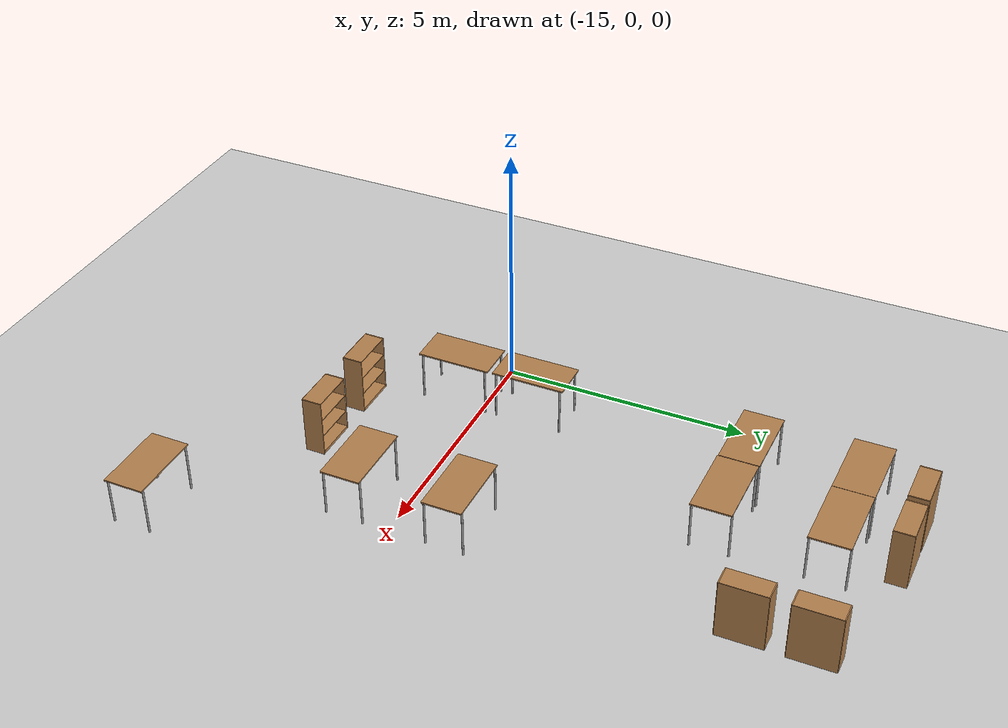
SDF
<sdf version="1.5">
 <world name="default">
  <model name="ground_plane">
   <static>1</static>
   <link name="link">
    <collision name="collision">
     <geometry><plane><normal>0 0 1</normal><size>100 100</size></plane></geometry>
     <surface><friction><ode><mu>100</mu><mu2>50</mu2></ode></friction></surface>
    </collision>
    <visual name="visual">
     <cast_shadows>0</cast_shadows>
     <geometry><plane><normal>0 0 1</normal><size>100 100</size></plane></geometry>
     <material>
      <script><uri>file://media/materials/scripts/gazebo.material</uri><name>Gazebo/Grey</name></script>
     </material>
    </visual>
   </link>
  </model>
  <model name="table_3">
   <static>1</static>
   <link name="link">
    <collision name="surface">
     <pose>0 0 1 0 -0 0</pose>
     <geometry><box><size>1.5 0.8 0.03</size></box></geometry>
     <surface><friction><ode><mu>0.6</mu><mu2>0.6</mu2></ode></friction></surface>
    </collision>
    <visual name="visual1">
     <pose>0 0 1 0 -0 0</pose>
     <geometry><box><size>1.5 0.8 0.03</size></box></geometry>
     <material>
      <script><uri>file://media/materials/scripts/gazebo.material</uri><name>Gazebo/Wood</name></script>
     </material>
    </visual>
    <collision name="front_left_leg">
     <pose>0.68 0.38 0.5 0 -0 0</pose>
     <geometry><cylinder><radius>0.02</radius><length>1</length></cylinder></geometry>
    </collision>
    <visual name="front_left_leg">
     <pose>0.68 0.38 0.5 0 -0 0</pose>
     <geometry><cylinder><radius>0.02</radius><length>1</length></cylinder></geometry>
     <material>
      <script><uri>file://media/materials/scripts/gazebo.material</uri><name>Gazebo/Grey</name></script>
     </material>
    </visual>
    <collision name="front_right_leg">
     <pose>0.68 -0.38 0.5 0 -0 0</pose>
     <geometry><cylinder><radius>0.02</radius><length>1</length></cylinder></geometry>
    </collision>
    <visual name="front_right_leg">
     <pose>0.68 -0.38 0.5 0 -0 0</pose>
     <geometry><cylinder><radius>0.02</radius><length>1</length></cylinder></geometry>
     <material>
      <script><uri>file://media/materials/scripts/gazebo.material</uri><name>Gazebo/Grey</name></script>
     </material>
    </visual>
    <collision name="back_right_leg">
     <pose>-0.68 -0.38 0.5 0 -0 0</pose>
     <geometry><cylinder><radius>0.02</radius><length>1</length></cylinder></geometry>
    </collision>
    <visual name="back_right_leg">
     <pose>-0.68 -0.38 0.5 0 -0 0</pose>
     <geometry><cylinder><radius>0.02</radius><length>1</length></cylinder></geometry>
     <material>
      <script><uri>file://media/materials/scripts/gazebo.material</uri><name>Gazebo/Grey</name></script>
     </material>
    </visual>
    <collision name="back_left_leg">
     <pose>-0.68 0.38 0.5 0 -0 0</pose>
     <geometry><cylinder><radius>0.02</radius><length>1</length></cylinder></geometry>
    </collision>
    <visual name="back_left_leg">
     <pose>-0.68 0.38 0.5 0 -0 0</pose>
     <geometry><cylinder><radius>0.02</radius><length>1</length></cylinder></geometry>
     <material>
      <script><uri>file://media/materials/scripts/gazebo.material</uri><name>Gazebo/Grey</name></script>
     </material>
    </visual>
   </link>
   <pose>-13.7373 7.65628 0 0 -0 0</pose>
  </model>
  <model name="table_4">
   <static>1</static>
   <link name="link">
    <collision name="surface">
     <pose>0 0 1 0 -0 0</pose>
     <geometry><box><size>1.5 0.8 0.03</size></box></geometry>
     <surface><friction><ode><mu>0.6</mu><mu2>0.6</mu2></ode></friction></surface>
    </collision>
    <visual name="visual1">
     <pose>0 0 1 0 -0 0</pose>
     <geometry><box><size>1.5 0.8 0.03</size></box></geometry>
     <material>
      <script><uri>file://media/materials/scripts/gazebo.material</uri><name>Gazebo/Wood</name></script>
     </material>
    </visual>
    <collision name="front_left_leg">
     <pose>0.68 0.38 0.5 0 -0 0</pose>
     <geometry><cylinder><radius>0.02</radius><length>1</length></cylinder></geometry>
    </collision>
    <visual name="front_left_leg">
     <pose>0.68 0.38 0.5 0 -0 0</pose>
     <geometry><cylinder><radius>0.02</radius><length>1</length></cylinder></geometry>
     <material>
      <script><uri>file://media/materials/scripts/gazebo.material</uri><name>Gazebo/Grey</name></script>
     </material>
    </visual>
    <collision name="front_right_leg">
     <pose>0.68 -0.38 0.5 0 -0 0</pose>
     <geometry><cylinder><radius>0.02</radius><length>1</length></cylinder></geometry>
    </collision>
    <visual name="front_right_leg">
     <pose>0.68 -0.38 0.5 0 -0 0</pose>
     <geometry><cylinder><radius>0.02</radius><length>1</length></cylinder></geometry>
     <material>
      <script><uri>file://media/materials/scripts/gazebo.material</uri><name>Gazebo/Grey</name></script>
     </material>
    </visual>
    <collision name="back_right_leg">
     <pose>-0.68 -0.38 0.5 0 -0 0</pose>
     <geometry><cylinder><radius>0.02</radius><length>1</length></cylinder></geometry>
    </collision>
    <visual name="back_right_leg">
     <pose>-0.68 -0.38 0.5 0 -0 0</pose>
     <geometry><cylinder><radius>0.02</radius><length>1</length></cylinder></geometry>
     <material>
      <script><uri>file://media/materials/scripts/gazebo.material</uri><name>Gazebo/Grey</name></script>
     </material>
    </visual>
    <collision name="back_left_leg">
     <pose>-0.68 0.38 0.5 0 -0 0</pose>
     <geometry><cylinder><radius>0.02</radius><length>1</length></cylinder></geometry>
    </collision>
    <visual name="back_left_leg">
     <pose>-0.68 0.38 0.5 0 -0 0</pose>
     <geometry><cylinder><radius>0.02</radius><length>1</length></cylinder></geometry>
     <material>
      <script><uri>file://media/materials/scripts/gazebo.material</uri><name>Gazebo/Grey</name></script>
     </material>
    </visual>
   </link>
   <pose>-12.2332 7.652 0 0 -0 0</pose>
  </model>
  <model name="table_5">
   <static>1</static>
   <link name="link">
    <collision name="surface">
     <pose>0 0 1 0 -0 0</pose>
     <geometry><box><size>1.5 0.8 0.03</size></box></geometry>
     <surface><friction><ode><mu>0.6</mu><mu2>0.6</mu2></ode></friction></surface>
    </collision>
    <visual name="visual1">
     <pose>0 0 1 0 -0 0</pose>
     <geometry><box><size>1.5 0.8 0.03</size></box></geometry>
     <material>
      <script><uri>file://media/materials/scripts/gazebo.material</uri><name>Gazebo/Wood</name></script>
     </material>
    </visual>
    <collision name="front_left_leg">
     <pose>0.68 0.38 0.5 0 -0 0</pose>
     <geometry><cylinder><radius>0.02</radius><length>1</length></cylinder></geometry>
    </collision>
    <visual name="front_left_leg">
     <pose>0.68 0.38 0.5 0 -0 0</pose>
     <geometry><cylinder><radius>0.02</radius><length>1</length></cylinder></geometry>
     <material>
      <script><uri>file://media/materials/scripts/gazebo.material</uri><name>Gazebo/Grey</name></script>
     </material>
    </visual>
    <collision name="front_right_leg">
     <pose>0.68 -0.38 0.5 0 -0 0</pose>
     <geometry><cylinder><radius>0.02</radius><length>1</length></cylinder></geometry>
    </collision>
    <visual name="front_right_leg">
     <pose>0.68 -0.38 0.5 0 -0 0</pose>
     <geometry><cylinder><radius>0.02</radius><length>1</length></cylinder></geometry>
     <material>
      <script><uri>file://media/materials/scripts/gazebo.material</uri><name>Gazebo/Grey</name></script>
     </material>
    </visual>
    <collision name="back_right_leg">
     <pose>-0.68 -0.38 0.5 0 -0 0</pose>
     <geometry><cylinder><radius>0.02</radius><length>1</length></cylinder></geometry>
    </collision>
    <visual name="back_right_leg">
     <pose>-0.68 -0.38 0.5 0 -0 0</pose>
     <geometry><cylinder><radius>0.02</radius><length>1</length></cylinder></geometry>
     <material>
      <script><uri>file://media/materials/scripts/gazebo.material</uri><name>Gazebo/Grey</name></script>
     </material>
    </visual>
    <collision name="back_left_leg">
     <pose>-0.68 0.38 0.5 0 -0 0</pose>
     <geometry><cylinder><radius>0.02</radius><length>1</length></cylinder></geometry>
    </collision>
    <visual name="back_left_leg">
     <pose>-0.68 0.38 0.5 0 -0 0</pose>
     <geometry><cylinder><radius>0.02</radius><length>1</length></cylinder></geometry>
     <material>
      <script><uri>file://media/materials/scripts/gazebo.material</uri><name>Gazebo/Grey</name></script>
     </material>
    </visual>
   </link>
   <pose>-13.7221 5.51232 0 0 -0 0</pose>
  </model>
  <model name="table_4_clone">
   <static>1</static>
   <link name="link">
    <collision name="surface">
     <pose>0 0 1 0 -0 0</pose>
     <geometry><box><size>1.5 0.8 0.03</size></box></geometry>
     <surface><friction><ode><mu>0.6</mu><mu2>0.6</mu2></ode></friction></surface>
    </collision>
    <visual name="visual1">
     <pose>0 0 1 0 -0 0</pose>
     <geometry><box><size>1.5 0.8 0.03</size></box></geometry>
     <material>
      <script><uri>file://media/materials/scripts/gazebo.material</uri><name>Gazebo/Wood</name></script>
     </material>
    </visual>
    <collision name="front_left_leg">
     <pose>0.68 0.38 0.5 0 -0 0</pose>
     <geometry><cylinder><radius>0.02</radius><length>1</length></cylinder></geometry>
    </collision>
    <visual name="front_left_leg">
     <pose>0.68 0.38 0.5 0 -0 0</pose>
     <geometry><cylinder><radius>0.02</radius><length>1</length></cylinder></geometry>
     <material>
      <script><uri>file://media/materials/scripts/gazebo.material</uri><name>Gazebo/Grey</name></script>
     </material>
    </visual>
    <collision name="front_right_leg">
     <pose>0.68 -0.38 0.5 0 -0 0</pose>
     <geometry><cylinder><radius>0.02</radius><length>1</length></cylinder></geometry>
    </collision>
    <visual name="front_right_leg">
     <pose>0.68 -0.38 0.5 0 -0 0</pose>
     <geometry><cylinder><radius>0.02</radius><length>1</length></cylinder></geometry>
     <material>
      <script><uri>file://media/materials/scripts/gazebo.material</uri><name>Gazebo/Grey</name></script>
     </material>
    </visual>
    <collision name="back_right_leg">
     <pose>-0.68 -0.38 0.5 0 -0 0</pose>
     <geometry><cylinder><radius>0.02</radius><length>1</length></cylinder></geometry>
    </collision>
    <visual name="back_right_leg">
     <pose>-0.68 -0.38 0.5 0 -0 0</pose>
     <geometry><cylinder><radius>0.02</radius><length>1</length></cylinder></geometry>
     <material>
      <script><uri>file://media/materials/scripts/gazebo.material</uri><name>Gazebo/Grey</name></script>
     </material>
    </visual>
    <collision name="back_left_leg">
     <pose>-0.68 0.38 0.5 0 -0 0</pose>
     <geometry><cylinder><radius>0.02</radius><length>1</length></cylinder></geometry>
    </collision>
    <visual name="back_left_leg">
     <pose>-0.68 0.38 0.5 0 -0 0</pose>
     <geometry><cylinder><radius>0.02</radius><length>1</length></cylinder></geometry>
     <material>
      <script><uri>file://media/materials/scripts/gazebo.material</uri><name>Gazebo/Grey</name></script>
     </material>
    </visual>
   </link>
   <pose>-12.2087 5.50056 0 0 -0 0</pose>
  </model>
  <model name="bookshelf_3">
   <static>1</static>
   <link name="link">
    <inertial><mass>1</mass></inertial>
    <collision name="back">
     <pose>0 0.005 0.6 0 -0 0</pose>
     <geometry><box><size>0.9 0.01 1.2</size></box></geometry>
    </collision>
    <visual name="visual1">
     <pose>0 0.005 0.6 0 -0 0</pose>
     <geometry><box><size>0.9 0.01 1.2</size></box></geometry>
     <material>
      <script><uri>file://media/materials/scripts/gazebo.material</uri><name>Gazebo/Wood</name></script>
     </material>
    </visual>
    <collision name="left_side">
     <pose>0.45 -0.195 0.6 0 -0 0</pose>
     <geometry><box><size>0.02 0.4 1.2</size></box></geometry>
    </collision>
    <visual name="visual2">
     <pose>0.45 -0.195 0.6 0 -0 0</pose>
     <geometry><box><size>0.02 0.4 1.2</size></box></geometry>
     <material>
      <script><uri>file://media/materials/scripts/gazebo.material</uri><name>Gazebo/Wood</name></script>
     </material>
    </visual>
    <collision name="right_side">
     <pose>-0.45 -0.195 0.6 0 -0 0</pose>
     <geometry><box><size>0.02 0.4 1.2</size></box></geometry>
    </collision>
    <visual name="visual3">
     <pose>-0.45 -0.195 0.6 0 -0 0</pose>
     <geometry><box><size>0.02 0.4 1.2</size></box></geometry>
     <material>
      <script><uri>file://media/materials/scripts/gazebo.material</uri><name>Gazebo/Wood</name></script>
     </material>
    </visual>
    <collision name="bottom">
     <pose>0 -0.195 0.03 0 -0 0</pose>
     <geometry><box><size>0.88 0.4 0.06</size></box></geometry>
    </collision>
    <visual name="visual4">
     <pose>0 -0.195 0.03 0 -0 0</pose>
     <geometry><box><size>0.88 0.4 0.06</size></box></geometry>
     <material>
      <script><uri>file://media/materials/scripts/gazebo.material</uri><name>Gazebo/Wood</name></script>
     </material>
    </visual>
    <collision name="top">
     <pose>0 -0.195 1.19 0 -0 0</pose>
     <geometry><box><size>0.88 0.4 0.02</size></box></geometry>
    </collision>
    <visual name="visual5">
     <pose>0 -0.195 1.19 0 -0 0</pose>
     <geometry><box><size>0.88 0.4 0.02</size></box></geometry>
     <material>
      <script><uri>file://media/materials/scripts/gazebo.material</uri><name>Gazebo/Wood</name></script>
     </material>
    </visual>
    <collision name="low_shelf">
     <pose>0 -0.195 0.43 0 -0 0</pose>
     <geometry><box><size>0.88 0.4 0.02</size></box></geometry>
    </collision>
    <visual name="visual6">
     <pose>0 -0.195 0.43 0 -0 0</pose>
     <geometry><box><size>0.88 0.4 0.02</size></box></geometry>
     <material>
      <script><uri>file://media/materials/scripts/gazebo.material</uri><name>Gazebo/Wood</name></script>
     </material>
    </visual>
    <collision name="high_shelf">
     <pose>0 -0.195 0.8 0 -0 0</pose>
     <geometry><box><size>0.88 0.4 0.02</size></box></geometry>
    </collision>
    <visual name="visual7">
     <pose>0 -0.195 0.8 0 -0 0</pose>
     <geometry><box><size>0.88 0.4 0.02</size></box></geometry>
     <material>
      <script><uri>file://media/materials/scripts/gazebo.material</uri><name>Gazebo/Wood</name></script>
     </material>
    </visual>
   </link>
   <pose>-13.5188 8.98844 0 0 -0 0</pose>
  </model>
  <model name="bookshelf_3_clone">
   <static>1</static>
   <link name="link">
    <inertial><mass>1</mass></inertial>
    <collision name="back">
     <pose>0 0.005 0.6 0 -0 0</pose>
     <geometry><box><size>0.9 0.01 1.2</size></box></geometry>
    </collision>
    <visual name="visual1">
     <pose>0 0.005 0.6 0 -0 0</pose>
     <geometry><box><size>0.9 0.01 1.2</size></box></geometry>
     <material>
      <script><uri>file://media/materials/scripts/gazebo.material</uri><name>Gazebo/Wood</name></script>
     </material>
    </visual>
    <collision name="left_side">
     <pose>0.45 -0.195 0.6 0 -0 0</pose>
     <geometry><box><size>0.02 0.4 1.2</size></box></geometry>
    </collision>
    <visual name="visual2">
     <pose>0.45 -0.195 0.6 0 -0 0</pose>
     <geometry><box><size>0.02 0.4 1.2</size></box></geometry>
     <material>
      <script><uri>file://media/materials/scripts/gazebo.material</uri><name>Gazebo/Wood</name></script>
     </material>
    </visual>
    <collision name="right_side">
     <pose>-0.45 -0.195 0.6 0 -0 0</pose>
     <geometry><box><size>0.02 0.4 1.2</size></box></geometry>
    </collision>
    <visual name="visual3">
     <pose>-0.45 -0.195 0.6 0 -0 0</pose>
     <geometry><box><size>0.02 0.4 1.2</size></box></geometry>
     <material>
      <script><uri>file://media/materials/scripts/gazebo.material</uri><name>Gazebo/Wood</name></script>
     </material>
    </visual>
    <collision name="bottom">
     <pose>0 -0.195 0.03 0 -0 0</pose>
     <geometry><box><size>0.88 0.4 0.06</size></box></geometry>
    </collision>
    <visual name="visual4">
     <pose>0 -0.195 0.03 0 -0 0</pose>
     <geometry><box><size>0.88 0.4 0.06</size></box></geometry>
     <material>
      <script><uri>file://media/materials/scripts/gazebo.material</uri><name>Gazebo/Wood</name></script>
     </material>
    </visual>
    <collision name="top">
     <pose>0 -0.195 1.19 0 -0 0</pose>
     <geometry><box><size>0.88 0.4 0.02</size></box></geometry>
    </collision>
    <visual name="visual5">
     <pose>0 -0.195 1.19 0 -0 0</pose>
     <geometry><box><size>0.88 0.4 0.02</size></box></geometry>
     <material>
      <script><uri>file://media/materials/scripts/gazebo.material</uri><name>Gazebo/Wood</name></script>
     </material>
    </visual>
    <collision name="low_shelf">
     <pose>0 -0.195 0.43 0 -0 0</pose>
     <geometry><box><size>0.88 0.4 0.02</size></box></geometry>
    </collision>
    <visual name="visual6">
     <pose>0 -0.195 0.43 0 -0 0</pose>
     <geometry><box><size>0.88 0.4 0.02</size></box></geometry>
     <material>
      <script><uri>file://media/materials/scripts/gazebo.material</uri><name>Gazebo/Wood</name></script>
     </material>
    </visual>
    <collision name="high_shelf">
     <pose>0 -0.195 0.8 0 -0 0</pose>
     <geometry><box><size>0.88 0.4 0.02</size></box></geometry>
    </collision>
    <visual name="visual7">
     <pose>0 -0.195 0.8 0 -0 0</pose>
     <geometry><box><size>0.88 0.4 0.02</size></box></geometry>
     <material>
      <script><uri>file://media/materials/scripts/gazebo.material</uri><name>Gazebo/Wood</name></script>
     </material>
    </visual>
   </link>
   <pose>-12.4901 8.9872 0 0 -0 0</pose>
  </model>
  <model name="bookshelf_4">
   <static>1</static>
   <link name="link">
    <inertial><mass>1</mass></inertial>
    <collision name="back">
     <pose>0 0.005 0.6 0 -0 0</pose>
     <geometry><box><size>0.9 0.01 1.2</size></box></geometry>
    </collision>
    <visual name="visual1">
     <pose>0 0.005 0.6 0 -0 0</pose>
     <geometry><box><size>0.9 0.01 1.2</size></box></geometry>
     <material>
      <script><uri>file://media/materials/scripts/gazebo.material</uri><name>Gazebo/Wood</name></script>
     </material>
    </visual>
    <collision name="left_side">
     <pose>0.45 -0.195 0.6 0 -0 0</pose>
     <geometry><box><size>0.02 0.4 1.2</size></box></geometry>
    </collision>
    <visual name="visual2">
     <pose>0.45 -0.195 0.6 0 -0 0</pose>
     <geometry><box><size>0.02 0.4 1.2</size></box></geometry>
     <material>
      <script><uri>file://media/materials/scripts/gazebo.material</uri><name>Gazebo/Wood</name></script>
     </material>
    </visual>
    <collision name="right_side">
     <pose>-0.45 -0.195 0.6 0 -0 0</pose>
     <geometry><box><size>0.02 0.4 1.2</size></box></geometry>
    </collision>
    <visual name="visual3">
     <pose>-0.45 -0.195 0.6 0 -0 0</pose>
     <geometry><box><size>0.02 0.4 1.2</size></box></geometry>
     <material>
      <script><uri>file://media/materials/scripts/gazebo.material</uri><name>Gazebo/Wood</name></script>
     </material>
    </visual>
    <collision name="bottom">
     <pose>0 -0.195 0.03 0 -0 0</pose>
     <geometry><box><size>0.88 0.4 0.06</size></box></geometry>
    </collision>
    <visual name="visual4">
     <pose>0 -0.195 0.03 0 -0 0</pose>
     <geometry><box><size>0.88 0.4 0.06</size></box></geometry>
     <material>
      <script><uri>file://media/materials/scripts/gazebo.material</uri><name>Gazebo/Wood</name></script>
     </material>
    </visual>
    <collision name="top">
     <pose>0 -0.195 1.19 0 -0 0</pose>
     <geometry><box><size>0.88 0.4 0.02</size></box></geometry>
    </collision>
    <visual name="visual5">
     <pose>0 -0.195 1.19 0 -0 0</pose>
     <geometry><box><size>0.88 0.4 0.02</size></box></geometry>
     <material>
      <script><uri>file://media/materials/scripts/gazebo.material</uri><name>Gazebo/Wood</name></script>
     </material>
    </visual>
    <collision name="low_shelf">
     <pose>0 -0.195 0.43 0 -0 0</pose>
     <geometry><box><size>0.88 0.4 0.02</size></box></geometry>
    </collision>
    <visual name="visual6">
     <pose>0 -0.195 0.43 0 -0 0</pose>
     <geometry><box><size>0.88 0.4 0.02</size></box></geometry>
     <material>
      <script><uri>file://media/materials/scripts/gazebo.material</uri><name>Gazebo/Wood</name></script>
     </material>
    </visual>
    <collision name="high_shelf">
     <pose>0 -0.195 0.8 0 -0 0</pose>
     <geometry><box><size>0.88 0.4 0.02</size></box></geometry>
    </collision>
    <visual name="visual7">
     <pose>0 -0.195 0.8 0 -0 0</pose>
     <geometry><box><size>0.88 0.4 0.02</size></box></geometry>
     <material>
      <script><uri>file://media/materials/scripts/gazebo.material</uri><name>Gazebo/Wood</name></script>
     </material>
    </visual>
   </link>
   <pose>-9.57059 6.7294 0 0 0 -1.56676</pose>
  </model>
  <model name="bookshelf_4_clone">
   <static>1</static>
   <link name="link">
    <inertial><mass>1</mass></inertial>
    <collision name="back">
     <pose>0 0.005 0.6 0 -0 0</pose>
     <geometry><box><size>0.9 0.01 1.2</size></box></geometry>
    </collision>
    <visual name="visual1">
     <pose>0 0.005 0.6 0 -0 0</pose>
     <geometry><box><size>0.9 0.01 1.2</size></box></geometry>
     <material>
      <script><uri>file://media/materials/scripts/gazebo.material</uri><name>Gazebo/Wood</name></script>
     </material>
    </visual>
    <collision name="left_side">
     <pose>0.45 -0.195 0.6 0 -0 0</pose>
     <geometry><box><size>0.02 0.4 1.2</size></box></geometry>
    </collision>
    <visual name="visual2">
     <pose>0.45 -0.195 0.6 0 -0 0</pose>
     <geometry><box><size>0.02 0.4 1.2</size></box></geometry>
     <material>
      <script><uri>file://media/materials/scripts/gazebo.material</uri><name>Gazebo/Wood</name></script>
     </material>
    </visual>
    <collision name="right_side">
     <pose>-0.45 -0.195 0.6 0 -0 0</pose>
     <geometry><box><size>0.02 0.4 1.2</size></box></geometry>
    </collision>
    <visual name="visual3">
     <pose>-0.45 -0.195 0.6 0 -0 0</pose>
     <geometry><box><size>0.02 0.4 1.2</size></box></geometry>
     <material>
      <script><uri>file://media/materials/scripts/gazebo.material</uri><name>Gazebo/Wood</name></script>
     </material>
    </visual>
    <collision name="bottom">
     <pose>0 -0.195 0.03 0 -0 0</pose>
     <geometry><box><size>0.88 0.4 0.06</size></box></geometry>
    </collision>
    <visual name="visual4">
     <pose>0 -0.195 0.03 0 -0 0</pose>
     <geometry><box><size>0.88 0.4 0.06</size></box></geometry>
     <material>
      <script><uri>file://media/materials/scripts/gazebo.material</uri><name>Gazebo/Wood</name></script>
     </material>
    </visual>
    <collision name="top">
     <pose>0 -0.195 1.19 0 -0 0</pose>
     <geometry><box><size>0.88 0.4 0.02</size></box></geometry>
    </collision>
    <visual name="visual5">
     <pose>0 -0.195 1.19 0 -0 0</pose>
     <geometry><box><size>0.88 0.4 0.02</size></box></geometry>
     <material>
      <script><uri>file://media/materials/scripts/gazebo.material</uri><name>Gazebo/Wood</name></script>
     </material>
    </visual>
    <collision name="low_shelf">
     <pose>0 -0.195 0.43 0 -0 0</pose>
     <geometry><box><size>0.88 0.4 0.02</size></box></geometry>
    </collision>
    <visual name="visual6">
     <pose>0 -0.195 0.43 0 -0 0</pose>
     <geometry><box><size>0.88 0.4 0.02</size></box></geometry>
     <material>
      <script><uri>file://media/materials/scripts/gazebo.material</uri><name>Gazebo/Wood</name></script>
     </material>
    </visual>
    <collision name="high_shelf">
     <pose>0 -0.195 0.8 0 -0 0</pose>
     <geometry><box><size>0.88 0.4 0.02</size></box></geometry>
    </collision>
    <visual name="visual7">
     <pose>0 -0.195 0.8 0 -0 0</pose>
     <geometry><box><size>0.88 0.4 0.02</size></box></geometry>
     <material>
      <script><uri>file://media/materials/scripts/gazebo.material</uri><name>Gazebo/Wood</name></script>
     </material>
    </visual>
   </link>
   <pose>-9.56947 8.00174 0 0 0 -1.56676</pose>
  </model>
  <model name="table_4_clone_clone">
   <static>1</static>
   <link name="link">
    <collision name="surface">
     <pose>0 0 1 0 -0 0</pose>
     <geometry><box><size>1.5 0.8 0.03</size></box></geometry>
     <surface><friction><ode><mu>0.6</mu><mu2>0.6</mu2></ode></friction></surface>
    </collision>
    <visual name="visual1">
     <pose>0 0 1 0 -0 0</pose>
     <geometry><box><size>1.5 0.8 0.03</size></box></geometry>
     <material>
      <script><uri>file://media/materials/scripts/gazebo.material</uri><name>Gazebo/Wood</name></script>
     </material>
    </visual>
    <collision name="front_left_leg">
     <pose>0.68 0.38 0.5 0 -0 0</pose>
     <geometry><cylinder><radius>0.02</radius><length>1</length></cylinder></geometry>
    </collision>
    <visual name="front_left_leg">
     <pose>0.68 0.38 0.5 0 -0 0</pose>
     <geometry><cylinder><radius>0.02</radius><length>1</length></cylinder></geometry>
     <material>
      <script><uri>file://media/materials/scripts/gazebo.material</uri><name>Gazebo/Grey</name></script>
     </material>
    </visual>
    <collision name="front_right_leg">
     <pose>0.68 -0.38 0.5 0 -0 0</pose>
     <geometry><cylinder><radius>0.02</radius><length>1</length></cylinder></geometry>
    </collision>
    <visual name="front_right_leg">
     <pose>0.68 -0.38 0.5 0 -0 0</pose>
     <geometry><cylinder><radius>0.02</radius><length>1</length></cylinder></geometry>
     <material>
      <script><uri>file://media/materials/scripts/gazebo.material</uri><name>Gazebo/Grey</name></script>
     </material>
    </visual>
    <collision name="back_right_leg">
     <pose>-0.68 -0.38 0.5 0 -0 0</pose>
     <geometry><cylinder><radius>0.02</radius><length>1</length></cylinder></geometry>
    </collision>
    <visual name="back_right_leg">
     <pose>-0.68 -0.38 0.5 0 -0 0</pose>
     <geometry><cylinder><radius>0.02</radius><length>1</length></cylinder></geometry>
     <material>
      <script><uri>file://media/materials/scripts/gazebo.material</uri><name>Gazebo/Grey</name></script>
     </material>
    </visual>
    <collision name="back_left_leg">
     <pose>-0.68 0.38 0.5 0 -0 0</pose>
     <geometry><cylinder><radius>0.02</radius><length>1</length></cylinder></geometry>
    </collision>
    <visual name="back_left_leg">
     <pose>-0.68 0.38 0.5 0 -0 0</pose>
     <geometry><cylinder><radius>0.02</radius><length>1</length></cylinder></geometry>
     <material>
      <script><uri>file://media/materials/scripts/gazebo.material</uri><name>Gazebo/Grey</name></script>
     </material>
    </visual>
   </link>
   <pose>-10.2772 1.15202 0 0 -0 0</pose>
  </model>
  <model name="table_3_clone">
   <static>1</static>
   <link name="link">
    <collision name="surface">
     <pose>0 0 1 0 -0 0</pose>
     <geometry><box><size>1.5 0.8 0.03</size></box></geometry>
     <surface><friction><ode><mu>0.6</mu><mu2>0.6</mu2></ode></friction></surface>
    </collision>
    <visual name="visual1">
     <pose>0 0 1 0 -0 0</pose>
     <geometry><box><size>1.5 0.8 0.03</size></box></geometry>
     <material>
      <script><uri>file://media/materials/scripts/gazebo.material</uri><name>Gazebo/Wood</name></script>
     </material>
    </visual>
    <collision name="front_left_leg">
     <pose>0.68 0.38 0.5 0 -0 0</pose>
     <geometry><cylinder><radius>0.02</radius><length>1</length></cylinder></geometry>
    </collision>
    <visual name="front_left_leg">
     <pose>0.68 0.38 0.5 0 -0 0</pose>
     <geometry><cylinder><radius>0.02</radius><length>1</length></cylinder></geometry>
     <material>
      <script><uri>file://media/materials/scripts/gazebo.material</uri><name>Gazebo/Grey</name></script>
     </material>
    </visual>
    <collision name="front_right_leg">
     <pose>0.68 -0.38 0.5 0 -0 0</pose>
     <geometry><cylinder><radius>0.02</radius><length>1</length></cylinder></geometry>
    </collision>
    <visual name="front_right_leg">
     <pose>0.68 -0.38 0.5 0 -0 0</pose>
     <geometry><cylinder><radius>0.02</radius><length>1</length></cylinder></geometry>
     <material>
      <script><uri>file://media/materials/scripts/gazebo.material</uri><name>Gazebo/Grey</name></script>
     </material>
    </visual>
    <collision name="back_right_leg">
     <pose>-0.68 -0.38 0.5 0 -0 0</pose>
     <geometry><cylinder><radius>0.02</radius><length>1</length></cylinder></geometry>
    </collision>
    <visual name="back_right_leg">
     <pose>-0.68 -0.38 0.5 0 -0 0</pose>
     <geometry><cylinder><radius>0.02</radius><length>1</length></cylinder></geometry>
     <material>
      <script><uri>file://media/materials/scripts/gazebo.material</uri><name>Gazebo/Grey</name></script>
     </material>
    </visual>
    <collision name="back_left_leg">
     <pose>-0.68 0.38 0.5 0 -0 0</pose>
     <geometry><cylinder><radius>0.02</radius><length>1</length></cylinder></geometry>
    </collision>
    <visual name="back_left_leg">
     <pose>-0.68 0.38 0.5 0 -0 0</pose>
     <geometry><cylinder><radius>0.02</radius><length>1</length></cylinder></geometry>
     <material>
      <script><uri>file://media/materials/scripts/gazebo.material</uri><name>Gazebo/Grey</name></script>
     </material>
    </visual>
   </link>
   <pose>-10.2746 -0.900628 0 0 -0 0</pose>
  </model>
  <model name="table_3_clone_clone">
   <static>1</static>
   <link name="link">
    <collision name="surface">
     <pose>0 0 1 0 -0 0</pose>
     <geometry><box><size>1.5 0.8 0.03</size></box></geometry>
     <surface><friction><ode><mu>0.6</mu><mu2>0.6</mu2></ode></friction></surface>
    </collision>
    <visual name="visual1">
     <pose>0 0 1 0 -0 0</pose>
     <geometry><box><size>1.5 0.8 0.03</size></box></geometry>
     <material>
      <script><uri>file://media/materials/scripts/gazebo.material</uri><name>Gazebo/Wood</name></script>
     </material>
    </visual>
    <collision name="front_left_leg">
     <pose>0.68 0.38 0.5 0 -0 0</pose>
     <geometry><cylinder><radius>0.02</radius><length>1</length></cylinder></geometry>
    </collision>
    <visual name="front_left_leg">
     <pose>0.68 0.38 0.5 0 -0 0</pose>
     <geometry><cylinder><radius>0.02</radius><length>1</length></cylinder></geometry>
     <material>
      <script><uri>file://media/materials/scripts/gazebo.material</uri><name>Gazebo/Grey</name></script>
     </material>
    </visual>
    <collision name="front_right_leg">
     <pose>0.68 -0.38 0.5 0 -0 0</pose>
     <geometry><cylinder><radius>0.02</radius><length>1</length></cylinder></geometry>
    </collision>
    <visual name="front_right_leg">
     <pose>0.68 -0.38 0.5 0 -0 0</pose>
     <geometry><cylinder><radius>0.02</radius><length>1</length></cylinder></geometry>
     <material>
      <script><uri>file://media/materials/scripts/gazebo.material</uri><name>Gazebo/Grey</name></script>
     </material>
    </visual>
    <collision name="back_right_leg">
     <pose>-0.68 -0.38 0.5 0 -0 0</pose>
     <geometry><cylinder><radius>0.02</radius><length>1</length></cylinder></geometry>
    </collision>
    <visual name="back_right_leg">
     <pose>-0.68 -0.38 0.5 0 -0 0</pose>
     <geometry><cylinder><radius>0.02</radius><length>1</length></cylinder></geometry>
     <material>
      <script><uri>file://media/materials/scripts/gazebo.material</uri><name>Gazebo/Grey</name></script>
     </material>
    </visual>
    <collision name="back_left_leg">
     <pose>-0.68 0.38 0.5 0 -0 0</pose>
     <geometry><cylinder><radius>0.02</radius><length>1</length></cylinder></geometry>
    </collision>
    <visual name="back_left_leg">
     <pose>-0.68 0.38 0.5 0 -0 0</pose>
     <geometry><cylinder><radius>0.02</radius><length>1</length></cylinder></geometry>
     <material>
      <script><uri>file://media/materials/scripts/gazebo.material</uri><name>Gazebo/Grey</name></script>
     </material>
    </visual>
   </link>
   <pose>-13.9483 1.00118 0 0 -0 1.57</pose>
  </model>
  <model name="table_3_clone_clone_clone">
   <static>1</static>
   <link name="link">
    <collision name="surface">
     <pose>0 0 1 0 -0 0</pose>
     <geometry><box><size>1.5 0.8 0.03</size></box></geometry>
     <surface><friction><ode><mu>0.6</mu><mu2>0.6</mu2></ode></friction></surface>
    </collision>
    <visual name="visual1">
     <pose>0 0 1 0 -0 0</pose>
     <geometry><box><size>1.5 0.8 0.03</size></box></geometry>
     <material>
      <script><uri>file://media/materials/scripts/gazebo.material</uri><name>Gazebo/Wood</name></script>
     </material>
    </visual>
    <collision name="front_left_leg">
     <pose>0.68 0.38 0.5 0 -0 0</pose>
     <geometry><cylinder><radius>0.02</radius><length>1</length></cylinder></geometry>
    </collision>
    <visual name="front_left_leg">
     <pose>0.68 0.38 0.5 0 -0 0</pose>
     <geometry><cylinder><radius>0.02</radius><length>1</length></cylinder></geometry>
     <material>
      <script><uri>file://media/materials/scripts/gazebo.material</uri><name>Gazebo/Grey</name></script>
     </material>
    </visual>
    <collision name="front_right_leg">
     <pose>0.68 -0.38 0.5 0 -0 0</pose>
     <geometry><cylinder><radius>0.02</radius><length>1</length></cylinder></geometry>
    </collision>
    <visual name="front_right_leg">
     <pose>0.68 -0.38 0.5 0 -0 0</pose>
     <geometry><cylinder><radius>0.02</radius><length>1</length></cylinder></geometry>
     <material>
      <script><uri>file://media/materials/scripts/gazebo.material</uri><name>Gazebo/Grey</name></script>
     </material>
    </visual>
    <collision name="back_right_leg">
     <pose>-0.68 -0.38 0.5 0 -0 0</pose>
     <geometry><cylinder><radius>0.02</radius><length>1</length></cylinder></geometry>
    </collision>
    <visual name="back_right_leg">
     <pose>-0.68 -0.38 0.5 0 -0 0</pose>
     <geometry><cylinder><radius>0.02</radius><length>1</length></cylinder></geometry>
     <material>
      <script><uri>file://media/materials/scripts/gazebo.material</uri><name>Gazebo/Grey</name></script>
     </material>
    </visual>
    <collision name="back_left_leg">
     <pose>-0.68 0.38 0.5 0 -0 0</pose>
     <geometry><cylinder><radius>0.02</radius><length>1</length></cylinder></geometry>
    </collision>
    <visual name="back_left_leg">
     <pose>-0.68 0.38 0.5 0 -0 0</pose>
     <geometry><cylinder><radius>0.02</radius><length>1</length></cylinder></geometry>
     <material>
      <script><uri>file://media/materials/scripts/gazebo.material</uri><name>Gazebo/Grey</name></script>
     </material>
    </visual>
   </link>
   <pose>-13.9349 -0.596275 0 0 -0 1.57</pose>
  </model>
  <model name="bookshelf_3_clone_clone">
   <static>1</static>
   <link name="link">
    <inertial><mass>1</mass></inertial>
    <collision name="back">
     <pose>0 0.005 0.6 0 -0 0</pose>
     <geometry><box><size>0.9 0.01 1.2</size></box></geometry>
    </collision>
    <visual name="visual1">
     <pose>0 0.005 0.6 0 -0 0</pose>
     <geometry><box><size>0.9 0.01 1.2</size></box></geometry>
     <material>
      <script><uri>file://media/materials/scripts/gazebo.material</uri><name>Gazebo/Wood</name></script>
     </material>
    </visual>
    <collision name="left_side">
     <pose>0.45 -0.195 0.6 0 -0 0</pose>
     <geometry><box><size>0.02 0.4 1.2</size></box></geometry>
    </collision>
    <visual name="visual2">
     <pose>0.45 -0.195 0.6 0 -0 0</pose>
     <geometry><box><size>0.02 0.4 1.2</size></box></geometry>
     <material>
      <script><uri>file://media/materials/scripts/gazebo.material</uri><name>Gazebo/Wood</name></script>
     </material>
    </visual>
    <collision name="right_side">
     <pose>-0.45 -0.195 0.6 0 -0 0</pose>
     <geometry><box><size>0.02 0.4 1.2</size></box></geometry>
    </collision>
    <visual name="visual3">
     <pose>-0.45 -0.195 0.6 0 -0 0</pose>
     <geometry><box><size>0.02 0.4 1.2</size></box></geometry>
     <material>
      <script><uri>file://media/materials/scripts/gazebo.material</uri><name>Gazebo/Wood</name></script>
     </material>
    </visual>
    <collision name="bottom">
     <pose>0 -0.195 0.03 0 -0 0</pose>
     <geometry><box><size>0.88 0.4 0.06</size></box></geometry>
    </collision>
    <visual name="visual4">
     <pose>0 -0.195 0.03 0 -0 0</pose>
     <geometry><box><size>0.88 0.4 0.06</size></box></geometry>
     <material>
      <script><uri>file://media/materials/scripts/gazebo.material</uri><name>Gazebo/Wood</name></script>
     </material>
    </visual>
    <collision name="top">
     <pose>0 -0.195 1.19 0 -0 0</pose>
     <geometry><box><size>0.88 0.4 0.02</size></box></geometry>
    </collision>
    <visual name="visual5">
     <pose>0 -0.195 1.19 0 -0 0</pose>
     <geometry><box><size>0.88 0.4 0.02</size></box></geometry>
     <material>
      <script><uri>file://media/materials/scripts/gazebo.material</uri><name>Gazebo/Wood</name></script>
     </material>
    </visual>
    <collision name="low_shelf">
     <pose>0 -0.195 0.43 0 -0 0</pose>
     <geometry><box><size>0.88 0.4 0.02</size></box></geometry>
    </collision>
    <visual name="visual6">
     <pose>0 -0.195 0.43 0 -0 0</pose>
     <geometry><box><size>0.88 0.4 0.02</size></box></geometry>
     <material>
      <script><uri>file://media/materials/scripts/gazebo.material</uri><name>Gazebo/Wood</name></script>
     </material>
    </visual>
    <collision name="high_shelf">
     <pose>0 -0.195 0.8 0 -0 0</pose>
     <geometry><box><size>0.88 0.4 0.02</size></box></geometry>
    </collision>
    <visual name="visual7">
     <pose>0 -0.195 0.8 0 -0 0</pose>
     <geometry><box><size>0.88 0.4 0.02</size></box></geometry>
     <material>
      <script><uri>file://media/materials/scripts/gazebo.material</uri><name>Gazebo/Wood</name></script>
     </material>
    </visual>
   </link>
   <pose>-13.0229 -2.51252 0 0 -0 3.14</pose>
  </model>
  <model name="bookshelf_3_clone_clone_clone">
   <static>1</static>
   <link name="link">
    <inertial><mass>1</mass></inertial>
    <collision name="back">
     <pose>0 0.005 0.6 0 -0 0</pose>
     <geometry><box><size>0.9 0.01 1.2</size></box></geometry>
    </collision>
    <visual name="visual1">
     <pose>0 0.005 0.6 0 -0 0</pose>
     <geometry><box><size>0.9 0.01 1.2</size></box></geometry>
     <material>
      <script><uri>file://media/materials/scripts/gazebo.material</uri><name>Gazebo/Wood</name></script>
     </material>
    </visual>
    <collision name="left_side">
     <pose>0.45 -0.195 0.6 0 -0 0</pose>
     <geometry><box><size>0.02 0.4 1.2</size></box></geometry>
    </collision>
    <visual name="visual2">
     <pose>0.45 -0.195 0.6 0 -0 0</pose>
     <geometry><box><size>0.02 0.4 1.2</size></box></geometry>
     <material>
      <script><uri>file://media/materials/scripts/gazebo.material</uri><name>Gazebo/Wood</name></script>
     </material>
    </visual>
    <collision name="right_side">
     <pose>-0.45 -0.195 0.6 0 -0 0</pose>
     <geometry><box><size>0.02 0.4 1.2</size></box></geometry>
    </collision>
    <visual name="visual3">
     <pose>-0.45 -0.195 0.6 0 -0 0</pose>
     <geometry><box><size>0.02 0.4 1.2</size></box></geometry>
     <material>
      <script><uri>file://media/materials/scripts/gazebo.material</uri><name>Gazebo/Wood</name></script>
     </material>
    </visual>
    <collision name="bottom">
     <pose>0 -0.195 0.03 0 -0 0</pose>
     <geometry><box><size>0.88 0.4 0.06</size></box></geometry>
    </collision>
    <visual name="visual4">
     <pose>0 -0.195 0.03 0 -0 0</pose>
     <geometry><box><size>0.88 0.4 0.06</size></box></geometry>
     <material>
      <script><uri>file://media/materials/scripts/gazebo.material</uri><name>Gazebo/Wood</name></script>
     </material>
    </visual>
    <collision name="top">
     <pose>0 -0.195 1.19 0 -0 0</pose>
     <geometry><box><size>0.88 0.4 0.02</size></box></geometry>
    </collision>
    <visual name="visual5">
     <pose>0 -0.195 1.19 0 -0 0</pose>
     <geometry><box><size>0.88 0.4 0.02</size></box></geometry>
     <material>
      <script><uri>file://media/materials/scripts/gazebo.material</uri><name>Gazebo/Wood</name></script>
     </material>
    </visual>
    <collision name="low_shelf">
     <pose>0 -0.195 0.43 0 -0 0</pose>
     <geometry><box><size>0.88 0.4 0.02</size></box></geometry>
    </collision>
    <visual name="visual6">
     <pose>0 -0.195 0.43 0 -0 0</pose>
     <geometry><box><size>0.88 0.4 0.02</size></box></geometry>
     <material>
      <script><uri>file://media/materials/scripts/gazebo.material</uri><name>Gazebo/Wood</name></script>
     </material>
    </visual>
    <collision name="high_shelf">
     <pose>0 -0.195 0.8 0 -0 0</pose>
     <geometry><box><size>0.88 0.4 0.02</size></box></geometry>
    </collision>
    <visual name="visual7">
     <pose>0 -0.195 0.8 0 -0 0</pose>
     <geometry><box><size>0.88 0.4 0.02</size></box></geometry>
     <material>
      <script><uri>file://media/materials/scripts/gazebo.material</uri><name>Gazebo/Wood</name></script>
     </material>
    </visual>
   </link>
   <pose>-11.5097 -2.5538 0 0 -0 3.14</pose>
  </model>
  <model name="table_0_clone_0">
   <static>1</static>
   <link name="link">
    <collision name="surface">
     <pose>0 0 1 0 -0 0</pose>
     <geometry><box><size>1.5 0.8 0.03</size></box></geometry>
     <surface><friction><ode><mu>0.6</mu><mu2>0.6</mu2></ode></friction></surface>
    </collision>
    <visual name="visual1">
     <pose>0 0 1 0 -0 0</pose>
     <geometry><box><size>1.5 0.8 0.03</size></box></geometry>
     <material>
      <script><uri>file://media/materials/scripts/gazebo.material</uri><name>Gazebo/Wood</name></script>
     </material>
    </visual>
    <collision name="front_left_leg">
     <pose>0.68 0.38 0.5 0 -0 0</pose>
     <geometry><cylinder><radius>0.02</radius><length>1</length></cylinder></geometry>
    </collision>
    <visual name="front_left_leg">
     <pose>0.68 0.38 0.5 0 -0 0</pose>
     <geometry><cylinder><radius>0.02</radius><length>1</length></cylinder></geometry>
     <material>
      <script><uri>file://media/materials/scripts/gazebo.material</uri><name>Gazebo/Grey</name></script>
     </material>
    </visual>
    <collision name="front_right_leg">
     <pose>0.68 -0.38 0.5 0 -0 0</pose>
     <geometry><cylinder><radius>0.02</radius><length>1</length></cylinder></geometry>
    </collision>
    <visual name="front_right_leg">
     <pose>0.68 -0.38 0.5 0 -0 0</pose>
     <geometry><cylinder><radius>0.02</radius><length>1</length></cylinder></geometry>
     <material>
      <script><uri>file://media/materials/scripts/gazebo.material</uri><name>Gazebo/Grey</name></script>
     </material>
    </visual>
    <collision name="back_right_leg">
     <pose>-0.68 -0.38 0.5 0 -0 0</pose>
     <geometry><cylinder><radius>0.02</radius><length>1</length></cylinder></geometry>
    </collision>
    <visual name="back_right_leg">
     <pose>-0.68 -0.38 0.5 0 -0 0</pose>
     <geometry><cylinder><radius>0.02</radius><length>1</length></cylinder></geometry>
     <material>
      <script><uri>file://media/materials/scripts/gazebo.material</uri><name>Gazebo/Grey</name></script>
     </material>
    </visual>
    <collision name="back_left_leg">
     <pose>-0.68 0.38 0.5 0 -0 0</pose>
     <geometry><cylinder><radius>0.02</radius><length>1</length></cylinder></geometry>
    </collision>
    <visual name="back_left_leg">
     <pose>-0.68 0.38 0.5 0 -0 0</pose>
     <geometry><cylinder><radius>0.02</radius><length>1</length></cylinder></geometry>
     <material>
      <script><uri>file://media/materials/scripts/gazebo.material</uri><name>Gazebo/Grey</name></script>
     </material>
    </visual>
   </link>
   <pose>-8.45263 -4.31546 0 0 -0 0</pose>
  </model>
 </world>
</sdf>
